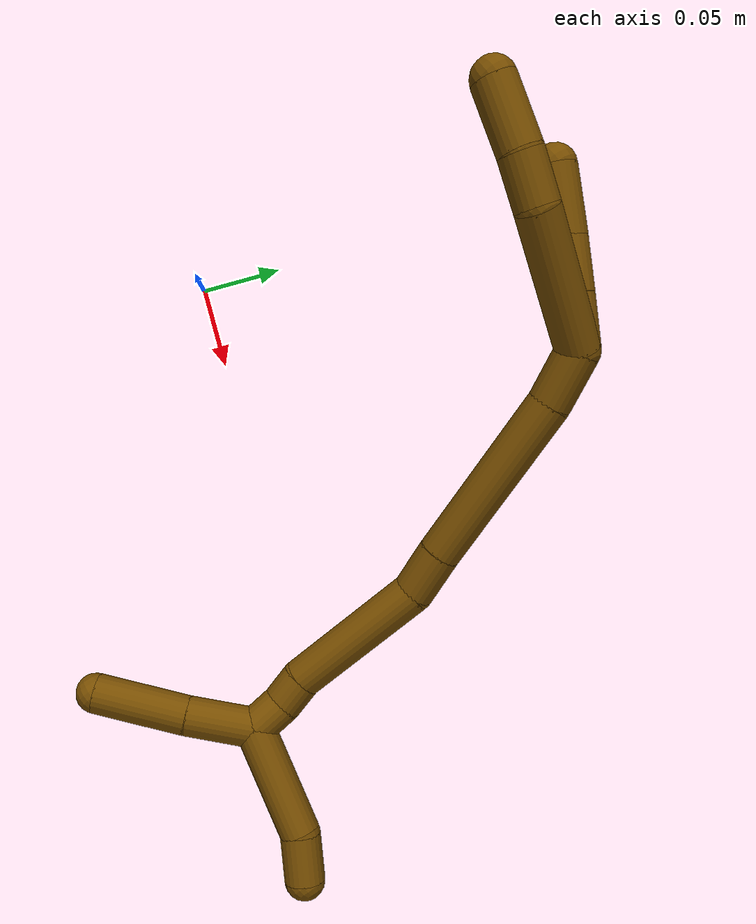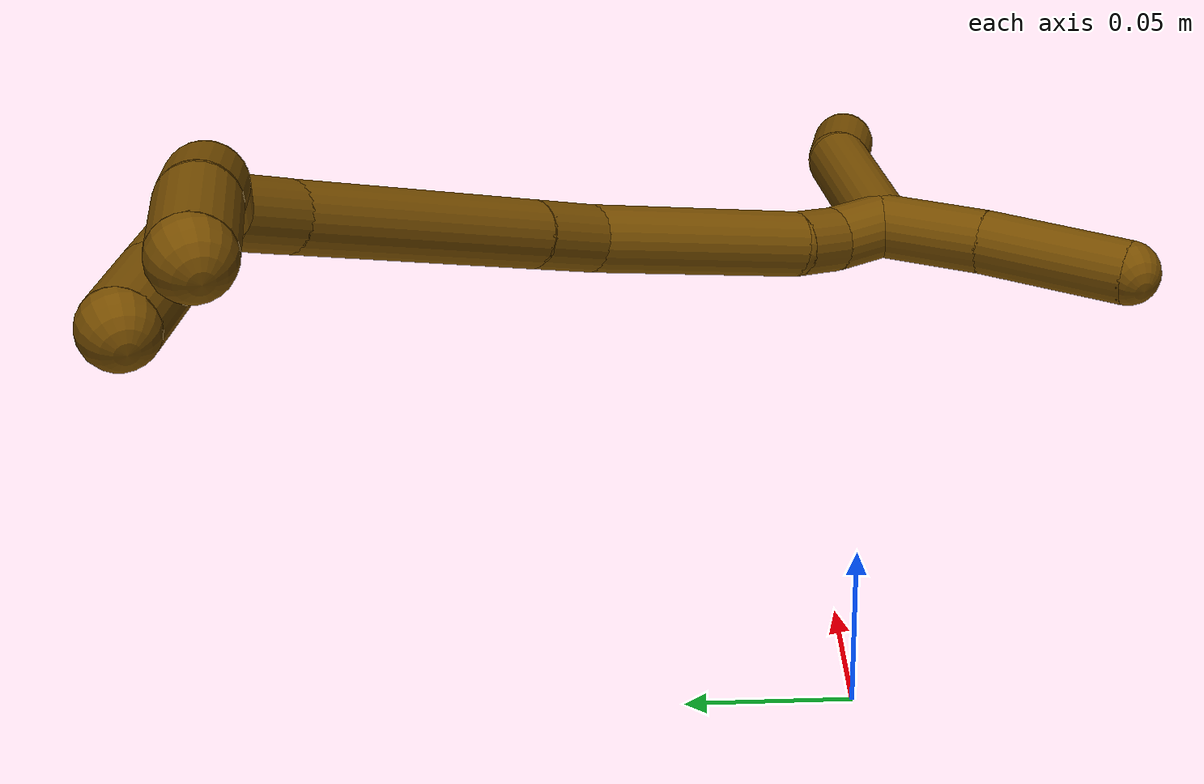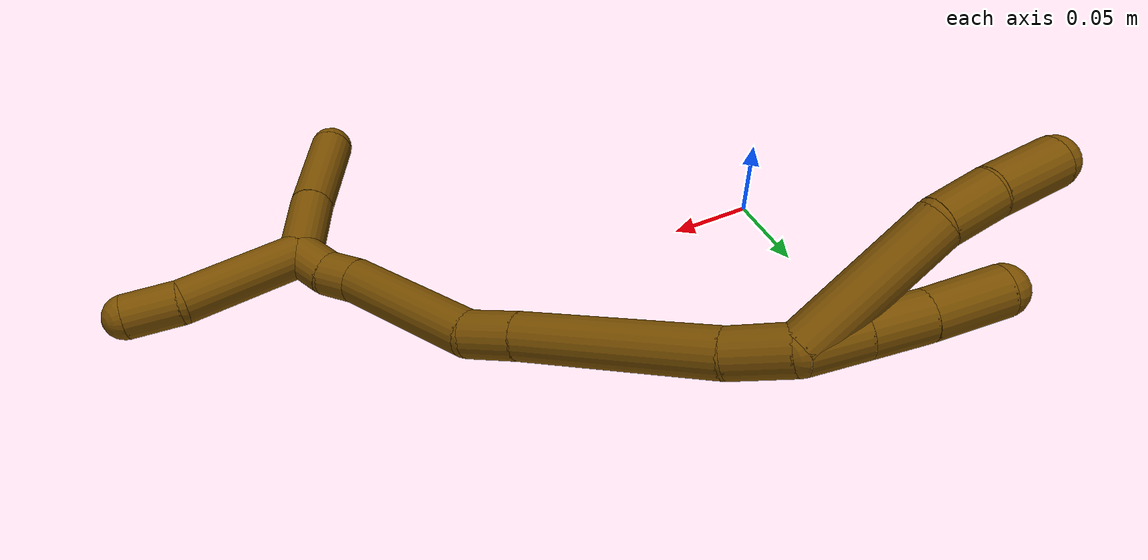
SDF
<sdf version="1.7">
 <world name="default">
  <model name="12">
   <static>0</static>
   <link name="12">
    <collision name="collision-cylinder-e_1_2_8">
     <pose>-0.026564 -0.009178 -0.029989 2.84461 -0.702767 -2.36672</pose>
     <geometry><cylinder><radius>0.0125</radius><length>0.0822</length></cylinder></geometry>
     <surface>
      <friction><ode><mu>1.16</mu><mu2>1.16</mu2><slip1>0</slip1><slip2>0</slip2></ode></friction>
      <contact><ode><kp>1e+06</kp><kd>1</kd><max_vel>0</max_vel><min_depth>0.001</min_depth></ode></contact>
     </surface>
    </collision>
    <visual name="visual-cylinder-e_1_2_8">
     <pose>-0.026564 -0.009178 -0.029989 2.84461 -0.702767 -2.36672</pose>
     <geometry><cylinder><radius>0.0125</radius><length>0.0822</length></cylinder></geometry>
     <material><ambient>0.466667 0.301961 0 1</ambient></material>
    </visual>
    <collision name="collision-cylinder-e_2_8_9">
     <pose>-0.060188 -0.018636 -0.072526 3.1192 -0.512339 -3.05615</pose>
     <geometry><cylinder><radius>0.0125</radius><length>0.028802</length></cylinder></geometry>
     <surface>
      <friction><ode><mu>1.16</mu><mu2>1.16</mu2><slip1>0</slip1><slip2>0</slip2></ode></friction>
      <contact><ode><kp>1e+06</kp><kd>1</kd><max_vel>0</max_vel><min_depth>0.001</min_depth></ode></contact>
     </surface>
    </collision>
    <visual name="visual-cylinder-e_2_8_9">
     <pose>-0.060188 -0.018636 -0.072526 3.1192 -0.512339 -3.05615</pose>
     <geometry><cylinder><radius>0.0125</radius><length>0.028802</length></cylinder></geometry>
     <material><ambient>0.466667 0.301961 0 1</ambient></material>
    </visual>
    <collision name="collision-cylinder-e_3_9_6">
     <pose>-0.074331 -0.018043 -0.103221 -3.09345 -0.371756 2.88693</pose>
     <geometry><cylinder><radius>0.0125</radius><length>0.038998</length></cylinder></geometry>
     <surface>
      <friction><ode><mu>1.16</mu><mu2>1.16</mu2><slip1>0</slip1><slip2>0</slip2></ode></friction>
      <contact><ode><kp>1e+06</kp><kd>1</kd><max_vel>0</max_vel><min_depth>0.001</min_depth></ode></contact>
     </surface>
    </collision>
    <visual name="visual-cylinder-e_3_9_6">
     <pose>-0.074331 -0.018043 -0.103221 -3.09345 -0.371756 2.88693</pose>
     <geometry><cylinder><radius>0.0125</radius><length>0.038998</length></cylinder></geometry>
     <material><ambient>0.466667 0.301961 0 1</ambient></material>
    </visual>
    <collision name="collision-cylinder-e_1_2_10">
     <pose>-0.007292 0.003587 -0.012734 -2.867 -0.503749 2.15613</pose>
     <geometry><cylinder><radius>0.0125</radius><length>0.030211</length></cylinder></geometry>
     <surface>
      <friction><ode><mu>1.16</mu><mu2>1.16</mu2><slip1>0</slip1><slip2>0</slip2></ode></friction>
      <contact><ode><kp>1e+06</kp><kd>1</kd><max_vel>0</max_vel><min_depth>0.001</min_depth></ode></contact>
     </surface>
    </collision>
    <visual name="visual-cylinder-e_1_2_10">
     <pose>-0.007292 0.003587 -0.012734 -2.867 -0.503749 2.15613</pose>
     <geometry><cylinder><radius>0.0125</radius><length>0.030211</length></cylinder></geometry>
     <material><ambient>0.466667 0.301961 0 1</ambient></material>
    </visual>
    <collision name="collision-cylinder-e_2_10_11">
     <pose>-0.021836 0.010765 -0.038521 -2.87316 -0.491791 2.15441</pose>
     <geometry><cylinder><radius>0.0125</radius><length>0.030718</length></cylinder></geometry>
     <surface>
      <friction><ode><mu>1.16</mu><mu2>1.16</mu2><slip1>0</slip1><slip2>0</slip2></ode></friction>
      <contact><ode><kp>1e+06</kp><kd>1</kd><max_vel>0</max_vel><min_depth>0.001</min_depth></ode></contact>
     </surface>
    </collision>
    <visual name="visual-cylinder-e_2_10_11">
     <pose>-0.021836 0.010765 -0.038521 -2.87316 -0.491791 2.15441</pose>
     <geometry><cylinder><radius>0.0125</radius><length>0.030718</length></cylinder></geometry>
     <material><ambient>0.466667 0.301961 0 1</ambient></material>
    </visual>
    <collision name="collision-cylinder-e_3_11_5">
     <pose>-0.038557 0.018053 -0.068258 -2.92351 -0.505996 2.34048</pose>
     <geometry><cylinder><radius>0.0125</radius><length>0.039071</length></cylinder></geometry>
     <surface>
      <friction><ode><mu>1.16</mu><mu2>1.16</mu2><slip1>0</slip1><slip2>0</slip2></ode></friction>
      <contact><ode><kp>1e+06</kp><kd>1</kd><max_vel>0</max_vel><min_depth>0.001</min_depth></ode></contact>
     </surface>
    </collision>
    <visual name="visual-cylinder-e_3_11_5">
     <pose>-0.038557 0.018053 -0.068258 -2.92351 -0.505996 2.34048</pose>
     <geometry><cylinder><radius>0.0125</radius><length>0.039071</length></cylinder></geometry>
     <material><ambient>0.466667 0.301961 0 1</ambient></material>
    </visual>
    <collision name="collision-cylinder-e_1_2_12">
     <pose>0.013754 -0.006846 0.005753 0.871963 0.994325 0.49522</pose>
     <geometry><cylinder><radius>0.0125</radius><length>0.03281</length></cylinder></geometry>
     <surface>
      <friction><ode><mu>1.16</mu><mu2>1.16</mu2><slip1>0</slip1><slip2>0</slip2></ode></friction>
      <contact><ode><kp>1e+06</kp><kd>1</kd><max_vel>0</max_vel><min_depth>0.001</min_depth></ode></contact>
     </surface>
    </collision>
    <visual name="visual-cylinder-e_1_2_12">
     <pose>0.013754 -0.006846 0.005753 0.871963 0.994325 0.49522</pose>
     <geometry><cylinder><radius>0.0125</radius><length>0.03281</length></cylinder></geometry>
     <material><ambient>0.466667 0.301961 0 1</ambient></material>
    </visual>
    <collision name="collision-cylinder-e_2_12_13">
     <pose>0.071658 -0.041179 0.024484 1.12966 0.967825 0.643024</pose>
     <geometry><cylinder><radius>0.0125</radius><length>0.107205</length></cylinder></geometry>
     <surface>
      <friction><ode><mu>1.16</mu><mu2>1.16</mu2><slip1>0</slip1><slip2>0</slip2></ode></friction>
      <contact><ode><kp>1e+06</kp><kd>1</kd><max_vel>0</max_vel><min_depth>0.001</min_depth></ode></contact>
     </surface>
    </collision>
    <visual name="visual-cylinder-e_2_12_13">
     <pose>0.071658 -0.041179 0.024484 1.12966 0.967825 0.643024</pose>
     <geometry><cylinder><radius>0.0125</radius><length>0.107205</length></cylinder></geometry>
     <material><ambient>0.466667 0.301961 0 1</ambient></material>
    </visual>
    <collision name="collision-cylinder-e_3_13_14">
     <pose>0.128164 -0.075924 0.041573 1.05544 0.977036 0.600811</pose>
     <geometry><cylinder><radius>0.0125</radius><length>0.029816</length></cylinder></geometry>
     <surface>
      <friction><ode><mu>1.16</mu><mu2>1.16</mu2><slip1>0</slip1><slip2>0</slip2></ode></friction>
      <contact><ode><kp>1e+06</kp><kd>1</kd><max_vel>0</max_vel><min_depth>0.001</min_depth></ode></contact>
     </surface>
    </collision>
    <visual name="visual-cylinder-e_3_13_14">
     <pose>0.128164 -0.075924 0.041573 1.05544 0.977036 0.600811</pose>
     <geometry><cylinder><radius>0.0125</radius><length>0.029816</length></cylinder></geometry>
     <material><ambient>0.466667 0.301961 0 1</ambient></material>
    </visual>
    <collision name="collision-cylinder-e_4_14_15">
     <pose>0.172247 -0.113373 0.046472 1.54471 0.810015 0.79129</pose>
     <geometry><cylinder><radius>0.0125</radius><length>0.087605</length></cylinder></geometry>
     <surface>
      <friction><ode><mu>1.16</mu><mu2>1.16</mu2><slip1>0</slip1><slip2>0</slip2></ode></friction>
      <contact><ode><kp>1e+06</kp><kd>1</kd><max_vel>0</max_vel><min_depth>0.001</min_depth></ode></contact>
     </surface>
    </collision>
    <visual name="visual-cylinder-e_4_14_15">
     <pose>0.172247 -0.113373 0.046472 1.54471 0.810015 0.79129</pose>
     <geometry><cylinder><radius>0.0125</radius><length>0.087605</length></cylinder></geometry>
     <material><ambient>0.466667 0.301961 0 1</ambient></material>
    </visual>
    <collision name="collision-cylinder-e_5_15_16">
     <pose>0.211265 -0.15019 0.049788 1.20631 0.799267 0.566199</pose>
     <geometry><cylinder><radius>0.0125</radius><length>0.020344</length></cylinder></geometry>
     <surface>
      <friction><ode><mu>1.16</mu><mu2>1.16</mu2><slip1>0</slip1><slip2>0</slip2></ode></friction>
      <contact><ode><kp>1e+06</kp><kd>1</kd><max_vel>0</max_vel><min_depth>0.001</min_depth></ode></contact>
     </surface>
    </collision>
    <visual name="visual-cylinder-e_5_15_16">
     <pose>0.211265 -0.15019 0.049788 1.20631 0.799267 0.566199</pose>
     <geometry><cylinder><radius>0.0125</radius><length>0.020344</length></cylinder></geometry>
     <material><ambient>0.466667 0.301961 0 1</ambient></material>
    </visual>
    <collision name="collision-cylinder-e_6_16_1">
     <pose>0.224379 -0.166163 0.053783 1.41509 0.551707 0.475061</pose>
     <geometry><cylinder><radius>0.0125</radius><length>0.022219</length></cylinder></geometry>
     <surface>
      <friction><ode><mu>1.16</mu><mu2>1.16</mu2><slip1>0</slip1><slip2>0</slip2></ode></friction>
      <contact><ode><kp>1e+06</kp><kd>1</kd><max_vel>0</max_vel><min_depth>0.001</min_depth></ode></contact>
     </surface>
    </collision>
    <visual name="visual-cylinder-e_6_16_1">
     <pose>0.224379 -0.166163 0.053783 1.41509 0.551707 0.475061</pose>
     <geometry><cylinder><radius>0.0125</radius><length>0.022219</length></cylinder></geometry>
     <material><ambient>0.466667 0.301961 0 1</ambient></material>
    </visual>
    <collision name="collision-cylinder-e_1_1_17">
     <pose>0.235387 -0.189989 0.040892 2.35204 0.248975 0.583531</pose>
     <geometry><cylinder><radius>0.0125</radius><length>0.04208</length></cylinder></geometry>
     <surface>
      <friction><ode><mu>1.16</mu><mu2>1.16</mu2><slip1>0</slip1><slip2>0</slip2></ode></friction>
      <contact><ode><kp>1e+06</kp><kd>1</kd><max_vel>0</max_vel><min_depth>0.001</min_depth></ode></contact>
     </surface>
    </collision>
    <visual name="visual-cylinder-e_1_1_17">
     <pose>0.235387 -0.189989 0.040892 2.35204 0.248975 0.583531</pose>
     <geometry><cylinder><radius>0.0125</radius><length>0.04208</length></cylinder></geometry>
     <material><ambient>0.466667 0.301961 0 1</ambient></material>
    </visual>
    <collision name="collision-cylinder-e_2_17_4">
     <pose>0.247433 -0.223106 0.005457 2.41747 0.239206 0.614489</pose>
     <geometry><cylinder><radius>0.0125</radius><length>0.05792</length></cylinder></geometry>
     <surface>
      <friction><ode><mu>1.16</mu><mu2>1.16</mu2><slip1>0</slip1><slip2>0</slip2></ode></friction>
      <contact><ode><kp>1e+06</kp><kd>1</kd><max_vel>0</max_vel><min_depth>0.001</min_depth></ode></contact>
     </surface>
    </collision>
    <visual name="visual-cylinder-e_2_17_4">
     <pose>0.247433 -0.223106 0.005457 2.41747 0.239206 0.614489</pose>
     <geometry><cylinder><radius>0.0125</radius><length>0.05792</length></cylinder></geometry>
     <material><ambient>0.466667 0.301961 0 1</ambient></material>
    </visual>
    <collision name="collision-cylinder-e_1_1_18">
     <pose>0.240838 -0.176499 0.088505 0.029716 0.309403 0.004634</pose>
     <geometry><cylinder><radius>0.0125</radius><length>0.069856</length></cylinder></geometry>
     <surface>
      <friction><ode><mu>1.16</mu><mu2>1.16</mu2><slip1>0</slip1><slip2>0</slip2></ode></friction>
      <contact><ode><kp>1e+06</kp><kd>1</kd><max_vel>0</max_vel><min_depth>0.001</min_depth></ode></contact>
     </surface>
    </collision>
    <visual name="visual-cylinder-e_1_1_18">
     <pose>0.240838 -0.176499 0.088505 0.029716 0.309403 0.004634</pose>
     <geometry><cylinder><radius>0.0125</radius><length>0.069856</length></cylinder></geometry>
     <material><ambient>0.466667 0.301961 0 1</ambient></material>
    </visual>
    <collision name="collision-cylinder-e_2_18_3">
     <pose>0.259542 -0.180905 0.134023 0.271781 0.564943 0.079327</pose>
     <geometry><cylinder><radius>0.0125</radius><length>0.030144</length></cylinder></geometry>
     <surface>
      <friction><ode><mu>1.16</mu><mu2>1.16</mu2><slip1>0</slip1><slip2>0</slip2></ode></friction>
      <contact><ode><kp>1e+06</kp><kd>1</kd><max_vel>0</max_vel><min_depth>0.001</min_depth></ode></contact>
     </surface>
    </collision>
    <visual name="visual-cylinder-e_2_18_3">
     <pose>0.259542 -0.180905 0.134023 0.271781 0.564943 0.079327</pose>
     <geometry><cylinder><radius>0.0125</radius><length>0.030144</length></cylinder></geometry>
     <material><ambient>0.466667 0.301961 0 1</ambient></material>
    </visual>
    <collision name="collision-sphere-3">
     <pose>0.267611 -0.184322 0.146286 0 -0 0</pose>
     <geometry><sphere><radius>0.0125</radius></sphere></geometry>
     <surface>
      <friction><ode><mu>1.16</mu><mu2>1.16</mu2><slip1>0</slip1><slip2>0</slip2></ode></friction>
      <contact><ode><kp>1e+06</kp><kd>1</kd><max_vel>0</max_vel><min_depth>0.001</min_depth></ode></contact>
     </surface>
    </collision>
    <visual name="visual-sphere-3">
     <pose>0.267611 -0.184322 0.146286 0 -0 0</pose>
     <geometry><sphere><radius>0.0125</radius></sphere></geometry>
     <material><ambient>0.466667 0.301961 0 1</ambient></material>
    </visual>
    <collision name="collision-sphere-11">
     <pose>-0.029088 0.014356 -0.051575 0 -0 0</pose>
     <geometry><sphere><radius>0.0125</radius></sphere></geometry>
     <surface>
      <friction><ode><mu>1.16</mu><mu2>1.16</mu2><slip1>0</slip1><slip2>0</slip2></ode></friction>
      <contact><ode><kp>1e+06</kp><kd>1</kd><max_vel>0</max_vel><min_depth>0.001</min_depth></ode></contact>
     </surface>
    </collision>
    <visual name="visual-sphere-11">
     <pose>-0.029088 0.014356 -0.051575 0 -0 0</pose>
     <geometry><sphere><radius>0.0125</radius></sphere></geometry>
     <material><ambient>0.466667 0.301961 0 1</ambient></material>
    </visual>
    <collision name="collision-sphere-10">
     <pose>-0.014583 0.007174 -0.025467 0 -0 0</pose>
     <geometry><sphere><radius>0.0125</radius></sphere></geometry>
     <surface>
      <friction><ode><mu>1.16</mu><mu2>1.16</mu2><slip1>0</slip1><slip2>0</slip2></ode></friction>
      <contact><ode><kp>1e+06</kp><kd>1</kd><max_vel>0</max_vel><min_depth>0.001</min_depth></ode></contact>
     </surface>
    </collision>
    <visual name="visual-sphere-10">
     <pose>-0.014583 0.007174 -0.025467 0 -0 0</pose>
     <geometry><sphere><radius>0.0125</radius></sphere></geometry>
     <material><ambient>0.466667 0.301961 0 1</ambient></material>
    </visual>
    <collision name="collision-sphere-6">
     <pose>-0.081414 -0.017169 -0.121367 0 -0 0</pose>
     <geometry><sphere><radius>0.0125</radius></sphere></geometry>
     <surface>
      <friction><ode><mu>1.16</mu><mu2>1.16</mu2><slip1>0</slip1><slip2>0</slip2></ode></friction>
      <contact><ode><kp>1e+06</kp><kd>1</kd><max_vel>0</max_vel><min_depth>0.001</min_depth></ode></contact>
     </surface>
    </collision>
    <visual name="visual-sphere-6">
     <pose>-0.081414 -0.017169 -0.121367 0 -0 0</pose>
     <geometry><sphere><radius>0.0125</radius></sphere></geometry>
     <material><ambient>0.466667 0.301961 0 1</ambient></material>
    </visual>
    <collision name="collision-sphere-9">
     <pose>-0.067248 -0.018917 -0.085075 0 -0 0</pose>
     <geometry><sphere><radius>0.0125</radius></sphere></geometry>
     <surface>
      <friction><ode><mu>1.16</mu><mu2>1.16</mu2><slip1>0</slip1><slip2>0</slip2></ode></friction>
      <contact><ode><kp>1e+06</kp><kd>1</kd><max_vel>0</max_vel><min_depth>0.001</min_depth></ode></contact>
     </surface>
    </collision>
    <visual name="visual-sphere-9">
     <pose>-0.067248 -0.018917 -0.085075 0 -0 0</pose>
     <geometry><sphere><radius>0.0125</radius></sphere></geometry>
     <material><ambient>0.466667 0.301961 0 1</ambient></material>
    </visual>
    <collision name="collision-sphere-2">
     <geometry><sphere><radius>0.0125</radius></sphere></geometry>
     <surface>
      <friction><ode><mu>1.16</mu><mu2>1.16</mu2><slip1>0</slip1><slip2>0</slip2></ode></friction>
      <contact><ode><kp>1e+06</kp><kd>1</kd><max_vel>0</max_vel><min_depth>0.001</min_depth></ode></contact>
     </surface>
    </collision>
    <visual name="visual-sphere-2">
     <geometry><sphere><radius>0.0125</radius></sphere></geometry>
     <material><ambient>0.466667 0.301961 0 1</ambient></material>
    </visual>
    <collision name="collision-sphere-8">
     <pose>-0.053129 -0.018355 -0.059977 0 -0 0</pose>
     <geometry><sphere><radius>0.0125</radius></sphere></geometry>
     <surface>
      <friction><ode><mu>1.16</mu><mu2>1.16</mu2><slip1>0</slip1><slip2>0</slip2></ode></friction>
      <contact><ode><kp>1e+06</kp><kd>1</kd><max_vel>0</max_vel><min_depth>0.001</min_depth></ode></contact>
     </surface>
    </collision>
    <visual name="visual-sphere-8">
     <pose>-0.053129 -0.018355 -0.059977 0 -0 0</pose>
     <geometry><sphere><radius>0.0125</radius></sphere></geometry>
     <material><ambient>0.466667 0.301961 0 1</ambient></material>
    </visual>
    <collision name="collision-sphere-5">
     <pose>-0.048025 0.02175 -0.08494 0 -0 0</pose>
     <geometry><sphere><radius>0.0125</radius></sphere></geometry>
     <surface>
      <friction><ode><mu>1.16</mu><mu2>1.16</mu2><slip1>0</slip1><slip2>0</slip2></ode></friction>
      <contact><ode><kp>1e+06</kp><kd>1</kd><max_vel>0</max_vel><min_depth>0.001</min_depth></ode></contact>
     </surface>
    </collision>
    <visual name="visual-sphere-5">
     <pose>-0.048025 0.02175 -0.08494 0 -0 0</pose>
     <geometry><sphere><radius>0.0125</radius></sphere></geometry>
     <material><ambient>0.466667 0.301961 0 1</ambient></material>
    </visual>
    <collision name="collision-sphere-12">
     <pose>0.027508 -0.013692 0.011505 0 -0 0</pose>
     <geometry><sphere><radius>0.0125</radius></sphere></geometry>
     <surface>
      <friction><ode><mu>1.16</mu><mu2>1.16</mu2><slip1>0</slip1><slip2>0</slip2></ode></friction>
      <contact><ode><kp>1e+06</kp><kd>1</kd><max_vel>0</max_vel><min_depth>0.001</min_depth></ode></contact>
     </surface>
    </collision>
    <visual name="visual-sphere-12">
     <pose>0.027508 -0.013692 0.011505 0 -0 0</pose>
     <geometry><sphere><radius>0.0125</radius></sphere></geometry>
     <material><ambient>0.466667 0.301961 0 1</ambient></material>
    </visual>
    <collision name="collision-sphere-13">
     <pose>0.115808 -0.068667 0.037463 0 -0 0</pose>
     <geometry><sphere><radius>0.0125</radius></sphere></geometry>
     <surface>
      <friction><ode><mu>1.16</mu><mu2>1.16</mu2><slip1>0</slip1><slip2>0</slip2></ode></friction>
      <contact><ode><kp>1e+06</kp><kd>1</kd><max_vel>0</max_vel><min_depth>0.001</min_depth></ode></contact>
     </surface>
    </collision>
    <visual name="visual-sphere-13">
     <pose>0.115808 -0.068667 0.037463 0 -0 0</pose>
     <geometry><sphere><radius>0.0125</radius></sphere></geometry>
     <material><ambient>0.466667 0.301961 0 1</ambient></material>
    </visual>
    <collision name="collision-sphere-14">
     <pose>0.140521 -0.083182 0.045684 0 -0 0</pose>
     <geometry><sphere><radius>0.0125</radius></sphere></geometry>
     <surface>
      <friction><ode><mu>1.16</mu><mu2>1.16</mu2><slip1>0</slip1><slip2>0</slip2></ode></friction>
      <contact><ode><kp>1e+06</kp><kd>1</kd><max_vel>0</max_vel><min_depth>0.001</min_depth></ode></contact>
     </surface>
    </collision>
    <visual name="visual-sphere-14">
     <pose>0.140521 -0.083182 0.045684 0 -0 0</pose>
     <geometry><sphere><radius>0.0125</radius></sphere></geometry>
     <material><ambient>0.466667 0.301961 0 1</ambient></material>
    </visual>
    <collision name="collision-sphere-15">
     <pose>0.203973 -0.143564 0.04726 0 -0 0</pose>
     <geometry><sphere><radius>0.0125</radius></sphere></geometry>
     <surface>
      <friction><ode><mu>1.16</mu><mu2>1.16</mu2><slip1>0</slip1><slip2>0</slip2></ode></friction>
      <contact><ode><kp>1e+06</kp><kd>1</kd><max_vel>0</max_vel><min_depth>0.001</min_depth></ode></contact>
     </surface>
    </collision>
    <visual name="visual-sphere-15">
     <pose>0.203973 -0.143564 0.04726 0 -0 0</pose>
     <geometry><sphere><radius>0.0125</radius></sphere></geometry>
     <material><ambient>0.466667 0.301961 0 1</ambient></material>
    </visual>
    <collision name="collision-sphere-16">
     <pose>0.218556 -0.156817 0.052316 0 -0 0</pose>
     <geometry><sphere><radius>0.0125</radius></sphere></geometry>
     <surface>
      <friction><ode><mu>1.16</mu><mu2>1.16</mu2><slip1>0</slip1><slip2>0</slip2></ode></friction>
      <contact><ode><kp>1e+06</kp><kd>1</kd><max_vel>0</max_vel><min_depth>0.001</min_depth></ode></contact>
     </surface>
    </collision>
    <visual name="visual-sphere-16">
     <pose>0.218556 -0.156817 0.052316 0 -0 0</pose>
     <geometry><sphere><radius>0.0125</radius></sphere></geometry>
     <material><ambient>0.466667 0.301961 0 1</ambient></material>
    </visual>
    <collision name="collision-sphere-1">
     <pose>0.230202 -0.17551 0.05525 0 -0 0</pose>
     <geometry><sphere><radius>0.0125</radius></sphere></geometry>
     <surface>
      <friction><ode><mu>1.16</mu><mu2>1.16</mu2><slip1>0</slip1><slip2>0</slip2></ode></friction>
      <contact><ode><kp>1e+06</kp><kd>1</kd><max_vel>0</max_vel><min_depth>0.001</min_depth></ode></contact>
     </surface>
    </collision>
    <visual name="visual-sphere-1">
     <pose>0.230202 -0.17551 0.05525 0 -0 0</pose>
     <geometry><sphere><radius>0.0125</radius></sphere></geometry>
     <material><ambient>0.466667 0.301961 0 1</ambient></material>
    </visual>
    <collision name="collision-sphere-18">
     <pose>0.251473 -0.177487 0.12176 0 -0 0</pose>
     <geometry><sphere><radius>0.0125</radius></sphere></geometry>
     <surface>
      <friction><ode><mu>1.16</mu><mu2>1.16</mu2><slip1>0</slip1><slip2>0</slip2></ode></friction>
      <contact><ode><kp>1e+06</kp><kd>1</kd><max_vel>0</max_vel><min_depth>0.001</min_depth></ode></contact>
     </surface>
    </collision>
    <visual name="visual-sphere-18">
     <pose>0.251473 -0.177487 0.12176 0 -0 0</pose>
     <geometry><sphere><radius>0.0125</radius></sphere></geometry>
     <material><ambient>0.466667 0.301961 0 1</ambient></material>
    </visual>
    <collision name="collision-sphere-17">
     <pose>0.240571 -0.204467 0.026533 0 -0 0</pose>
     <geometry><sphere><radius>0.0125</radius></sphere></geometry>
     <surface>
      <friction><ode><mu>1.16</mu><mu2>1.16</mu2><slip1>0</slip1><slip2>0</slip2></ode></friction>
      <contact><ode><kp>1e+06</kp><kd>1</kd><max_vel>0</max_vel><min_depth>0.001</min_depth></ode></contact>
     </surface>
    </collision>
    <visual name="visual-sphere-17">
     <pose>0.240571 -0.204467 0.026533 0 -0 0</pose>
     <geometry><sphere><radius>0.0125</radius></sphere></geometry>
     <material><ambient>0.466667 0.301961 0 1</ambient></material>
    </visual>
    <collision name="collision-sphere-4">
     <pose>0.254294 -0.241745 -0.015619 0 -0 0</pose>
     <geometry><sphere><radius>0.0125</radius></sphere></geometry>
     <surface>
      <friction><ode><mu>1.16</mu><mu2>1.16</mu2><slip1>0</slip1><slip2>0</slip2></ode></friction>
      <contact><ode><kp>1e+06</kp><kd>1</kd><max_vel>0</max_vel><min_depth>0.001</min_depth></ode></contact>
     </surface>
    </collision>
    <visual name="visual-sphere-4">
     <pose>0.254294 -0.241745 -0.015619 0 -0 0</pose>
     <geometry><sphere><radius>0.0125</radius></sphere></geometry>
     <material><ambient>0.466667 0.301961 0 1</ambient></material>
    </visual>
    <inertial>
     <pose>0.101331 -0.084177 0.013036 0 -0 0</pose>
     <mass>0.75</mass>
     <inertia><ixx>0.000174</ixx><ixy>0</ixy><ixz>0</ixz><iyy>0.000253</iyy><iyz>0</iyz><izz>4e-06</izz></inertia>
    </inertial>
   </link>
   <pose>0.112563 0.192618 0.115275 -1.11889 0.933088 -0.868211</pose>
  </model>
 </world>
</sdf>
